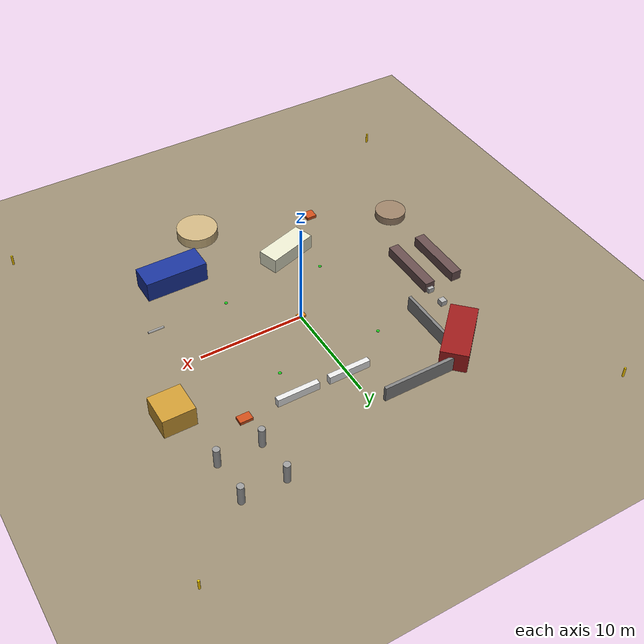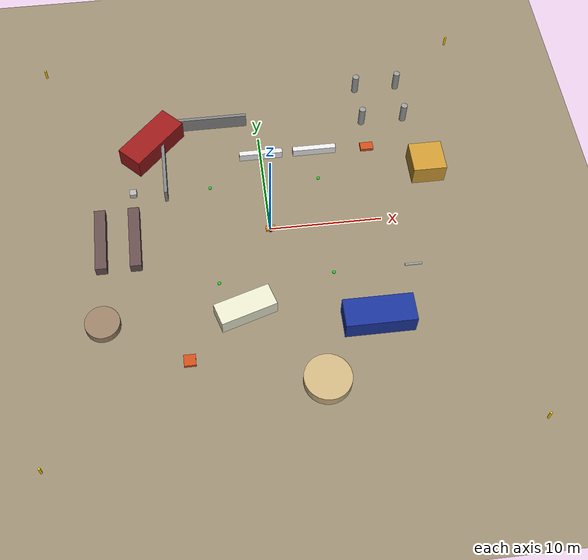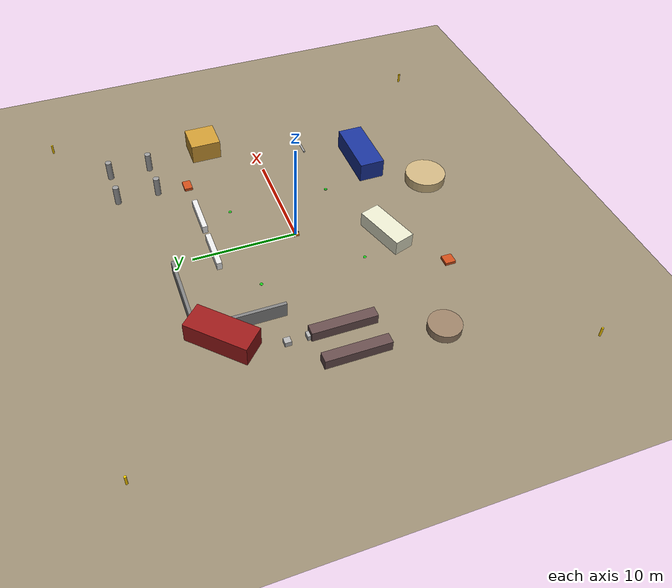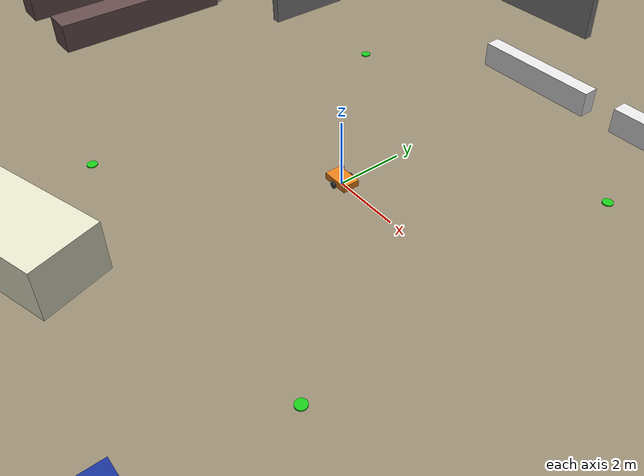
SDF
<?xml version="1.0"?>
<sdf version="1.9">
  <world name="construction_site">
    <!-- Physics settings -->
    <physics name="1ms" type="ignored">
      <max_step_size>0.002</max_step_size>
      <real_time_factor>1.0</real_time_factor>
    </physics>

    <!-- Scene settings -->
    <scene>
      <ambient>0.4 0.4 0.4 1</ambient>
      <background>0.6 0.7 0.9 1</background>
      <shadows>true</shadows>
    </scene>

    <!-- Plugins (sensors plugin removed for ARM64 Docker compatibility) -->
    <plugin filename="gz-sim-physics-system" name="gz::sim::systems::Physics"/>
    <plugin filename="gz-sim-user-commands-system" name="gz::sim::systems::UserCommands"/>
    <plugin filename="gz-sim-scene-broadcaster-system" name="gz::sim::systems::SceneBroadcaster"/>
    <plugin filename="gz-sim-contact-system" name="gz::sim::systems::Contact"/>

    <!-- Sun light -->
    <light type="directional" name="sun">
      <cast_shadows>true</cast_shadows>
      <pose>0 0 15 0 0 0</pose>
      <diffuse>1 1 1 1</diffuse>
      <specular>0.5 0.5 0.5 1</specular>
      <direction>0 0 -1</direction>
    </light>

    <!-- Ambient light -->
    <light type="directional" name="ambient">
      <cast_shadows>false</cast_shadows>
      <pose>0 0 10 0 0 0</pose>
      <diffuse>0.3 0.3 0.3 1</diffuse>
      <specular>0 0 0 1</specular>
      <direction>0 0 -1</direction>
    </light>

    <!-- Ground plane -->
    <model name="ground_plane">
      <static>true</static>
      <link name="link">
        <collision name="collision">
          <geometry>
            <plane>
              <normal>0 0 1</normal>
              <size>50 50</size>
            </plane>
          </geometry>
          <surface>
            <friction>
              <ode><mu>1.0</mu><mu2>1.0</mu2></ode>
            </friction>
          </surface>
        </collision>
        <visual name="visual">
          <geometry>
            <plane>
              <normal>0 0 1</normal>
              <size>50 50</size>
            </plane>
          </geometry>
          <material>
            <ambient>0.6 0.55 0.45 1</ambient>
            <diffuse>0.6 0.55 0.45 1</diffuse>
          </material>
        </visual>
      </link>
    </model>

    <!-- Site boundary markers (yellow posts) -->
    <model name="boundary_nw">
      <static>true</static>
      <pose>-20 20 0.5 0 0 0</pose>
      <link name="link">
        <visual name="visual">
          <geometry><cylinder><radius>0.1</radius><length>1.0</length></cylinder></geometry>
          <material><ambient>1 0.8 0 1</ambient><diffuse>1 0.8 0 1</diffuse></material>
        </visual>
        <collision name="collision">
          <geometry><cylinder><radius>0.1</radius><length>1.0</length></cylinder></geometry>
        </collision>
      </link>
    </model>

    <model name="boundary_ne">
      <static>true</static>
      <pose>20 20 0.5 0 0 0</pose>
      <link name="link">
        <visual name="visual">
          <geometry><cylinder><radius>0.1</radius><length>1.0</length></cylinder></geometry>
          <material><ambient>1 0.8 0 1</ambient><diffuse>1 0.8 0 1</diffuse></material>
        </visual>
        <collision name="collision">
          <geometry><cylinder><radius>0.1</radius><length>1.0</length></cylinder></geometry>
        </collision>
      </link>
    </model>

    <model name="boundary_sw">
      <static>true</static>
      <pose>-20 -20 0.5 0 0 0</pose>
      <link name="link">
        <visual name="visual">
          <geometry><cylinder><radius>0.1</radius><length>1.0</length></cylinder></geometry>
          <material><ambient>1 0.8 0 1</ambient><diffuse>1 0.8 0 1</diffuse></material>
        </visual>
        <collision name="collision">
          <geometry><cylinder><radius>0.1</radius><length>1.0</length></cylinder></geometry>
        </collision>
      </link>
    </model>

    <model name="boundary_se">
      <static>true</static>
      <pose>20 -20 0.5 0 0 0</pose>
      <link name="link">
        <visual name="visual">
          <geometry><cylinder><radius>0.1</radius><length>1.0</length></cylinder></geometry>
          <material><ambient>1 0.8 0 1</ambient><diffuse>1 0.8 0 1</diffuse></material>
        </visual>
        <collision name="collision">
          <geometry><cylinder><radius>0.1</radius><length>1.0</length></cylinder></geometry>
        </collision>
      </link>
    </model>

    <!-- Work area markers (green survey points) -->
    <model name="marker_1">
      <static>true</static>
      <pose>-5 5 0.02 0 0 0</pose>
      <link name="link">
        <visual name="visual">
          <geometry><cylinder><radius>0.15</radius><length>0.04</length></cylinder></geometry>
          <material><ambient>0.1 0.8 0.1 1</ambient><diffuse>0.1 0.8 0.1 1</diffuse></material>
        </visual>
      </link>
    </model>

    <model name="marker_2">
      <static>true</static>
      <pose>5 5 0.02 0 0 0</pose>
      <link name="link">
        <visual name="visual">
          <geometry><cylinder><radius>0.15</radius><length>0.04</length></cylinder></geometry>
          <material><ambient>0.1 0.8 0.1 1</ambient><diffuse>0.1 0.8 0.1 1</diffuse></material>
        </visual>
      </link>
    </model>

    <model name="marker_3">
      <static>true</static>
      <pose>5 -5 0.02 0 0 0</pose>
      <link name="link">
        <visual name="visual">
          <geometry><cylinder><radius>0.15</radius><length>0.04</length></cylinder></geometry>
          <material><ambient>0.1 0.8 0.1 1</ambient><diffuse>0.1 0.8 0.1 1</diffuse></material>
        </visual>
      </link>
    </model>

    <model name="marker_4">
      <static>true</static>
      <pose>-5 -5 0.02 0 0 0</pose>
      <link name="link">
        <visual name="visual">
          <geometry><cylinder><radius>0.15</radius><length>0.04</length></cylinder></geometry>
          <material><ambient>0.1 0.8 0.1 1</ambient><diffuse>0.1 0.8 0.1 1</diffuse></material>
        </visual>
      </link>
    </model>

    <!-- Obstacles: Pallet 1 -->
    <model name="pallet_1">
      <static>true</static>
      <pose>10 8 0.15 0 0 0</pose>
      <link name="link">
        <visual name="visual">
          <geometry><box><size>1.2 0.8 0.3</size></box></geometry>
          <material><ambient>0.8 0.3 0.1 1</ambient><diffuse>0.8 0.3 0.1 1</diffuse></material>
        </visual>
        <collision name="collision">
          <geometry><box><size>1.2 0.8 0.3</size></box></geometry>
        </collision>
      </link>
    </model>

    <!-- Obstacles: Pallet 2 -->
    <model name="pallet_2">
      <static>true</static>
      <pose>-8 -12 0.15 0 0 0</pose>
      <link name="link">
        <visual name="visual">
          <geometry><box><size>1.0 1.0 0.3</size></box></geometry>
          <material><ambient>0.8 0.3 0.1 1</ambient><diffuse>0.8 0.3 0.1 1</diffuse></material>
        </visual>
        <collision name="collision">
          <geometry><box><size>1.0 1.0 0.3</size></box></geometry>
        </collision>
      </link>
    </model>

    <!-- Obstacles: Pipes -->
    <model name="pipes">
      <static>true</static>
      <pose>12 -5 0.1 0 1.5708 0</pose>
      <link name="link">
        <visual name="visual">
          <geometry><cylinder><radius>0.1</radius><length>1.5</length></cylinder></geometry>
          <material><ambient>0.7 0.7 0.7 1</ambient><diffuse>0.7 0.7 0.7 1</diffuse></material>
        </visual>
        <collision name="collision">
          <geometry><cylinder><radius>0.1</radius><length>1.5</length></cylinder></geometry>
        </collision>
      </link>
    </model>

    <!-- Obstacles: Concrete block 1 -->
    <model name="block_1">
      <static>true</static>
      <pose>-12 3 0.25 0 0 0</pose>
      <link name="link">
        <visual name="visual">
          <geometry><box><size>0.6 0.6 0.5</size></box></geometry>
          <material><ambient>0.7 0.7 0.7 1</ambient><diffuse>0.7 0.7 0.7 1</diffuse></material>
        </visual>
        <collision name="collision">
          <geometry><box><size>0.6 0.6 0.5</size></box></geometry>
        </collision>
      </link>
    </model>

    <!-- Obstacles: Concrete block 2 -->
    <model name="block_2">
      <static>true</static>
      <pose>-12 5 0.25 0 0 0</pose>
      <link name="link">
        <visual name="visual">
          <geometry><box><size>0.6 0.6 0.5</size></box></geometry>
          <material><ambient>0.7 0.7 0.7 1</ambient><diffuse>0.7 0.7 0.7 1</diffuse></material>
        </visual>
        <collision name="collision">
          <geometry><box><size>0.6 0.6 0.5</size></box></geometry>
        </collision>
      </link>
    </model>

    <!-- LARGE OBSTACLES FOR SLAM/NAV2 TESTING         -->

    <!-- Storage Container 1 (large blue shipping container) -->
    <model name="container_1">
      <static>true</static>
      <pose>8 -10 1 0 0 0</pose>
      <link name="link">
        <visual name="visual">
          <geometry><box><size>6 2.5 2</size></box></geometry>
          <material><ambient>0.1 0.2 0.6 1</ambient><diffuse>0.1 0.2 0.6 1</diffuse></material>
        </visual>
        <collision name="collision">
          <geometry><box><size>6 2.5 2</size></box></geometry>
        </collision>
      </link>
    </model>

    <!-- Storage Container 2 -->
    <model name="container_2">
      <static>true</static>
      <pose>-10 10 1 0 0 0.785</pose>
      <link name="link">
        <visual name="visual">
          <geometry><box><size>6 2.5 2</size></box></geometry>
          <material><ambient>0.6 0.1 0.1 1</ambient><diffuse>0.6 0.1 0.1 1</diffuse></material>
        </visual>
        <collision name="collision">
          <geometry><box><size>6 2.5 2</size></box></geometry>
        </collision>
      </link>
    </model>

    <!-- Building Foundation (L-shaped wall) - Part 1 -->
    <model name="wall_1">
      <static>true</static>
      <pose>-5 12 0.75 0 0 0</pose>
      <link name="link">
        <visual name="visual">
          <geometry><box><size>8 0.3 1.5</size></box></geometry>
          <material><ambient>0.5 0.5 0.5 1</ambient><diffuse>0.5 0.5 0.5 1</diffuse></material>
        </visual>
        <collision name="collision">
          <geometry><box><size>8 0.3 1.5</size></box></geometry>
        </collision>
      </link>
    </model>

    <!-- Building Foundation - Part 2 (perpendicular) -->
    <model name="wall_2">
      <static>true</static>
      <pose>-9 8 0.75 0 0 0</pose>
      <link name="link">
        <visual name="visual">
          <geometry><box><size>0.3 8 1.5</size></box></geometry>
          <material><ambient>0.5 0.5 0.5 1</ambient><diffuse>0.5 0.5 0.5 1</diffuse></material>
        </visual>
        <collision name="collision">
          <geometry><box><size>0.3 8 1.5</size></box></geometry>
        </collision>
      </link>
    </model>

    <!-- Construction Equipment - Scaffolding structure -->
    <model name="scaffolding">
      <static>true</static>
      <pose>15 5 1 0 0 0</pose>
      <link name="link">
        <visual name="visual">
          <geometry><box><size>3 3 2</size></box></geometry>
          <material><ambient>0.8 0.6 0.2 1</ambient><diffuse>0.8 0.6 0.2 1</diffuse></material>
        </visual>
        <collision name="collision">
          <geometry><box><size>3 3 2</size></box></geometry>
        </collision>
      </link>
    </model>

    <!-- Material pile 1 (sand/gravel) -->
    <model name="material_pile_1">
      <static>true</static>
      <pose>3 -15 0.5 0 0 0</pose>
      <link name="link">
        <visual name="visual">
          <geometry><cylinder><radius>2</radius><length>1</length></cylinder></geometry>
          <material><ambient>0.8 0.7 0.5 1</ambient><diffuse>0.8 0.7 0.5 1</diffuse></material>
        </visual>
        <collision name="collision">
          <geometry><cylinder><radius>2</radius><length>1</length></cylinder></geometry>
        </collision>
      </link>
    </model>

    <!-- Material pile 2 -->
    <model name="material_pile_2">
      <static>true</static>
      <pose>-15 -8 0.4 0 0 0</pose>
      <link name="link">
        <visual name="visual">
          <geometry><cylinder><radius>1.5</radius><length>0.8</length></cylinder></geometry>
          <material><ambient>0.6 0.5 0.4 1</ambient><diffuse>0.6 0.5 0.4 1</diffuse></material>
        </visual>
        <collision name="collision">
          <geometry><cylinder><radius>1.5</radius><length>0.8</length></cylinder></geometry>
        </collision>
      </link>
    </model>

    <!-- Barrier wall (concrete jersey barrier) row -->
    <model name="barrier_1">
      <static>true</static>
      <pose>0 8 0.4 0 0 0</pose>
      <link name="link">
        <visual name="visual">
          <geometry><box><size>4 0.5 0.8</size></box></geometry>
          <material><ambient>0.9 0.9 0.9 1</ambient><diffuse>0.9 0.9 0.9 1</diffuse></material>
        </visual>
        <collision name="collision">
          <geometry><box><size>4 0.5 0.8</size></box></geometry>
        </collision>
      </link>
    </model>

    <model name="barrier_2">
      <static>true</static>
      <pose>5 8 0.4 0 0 0</pose>
      <link name="link">
        <visual name="visual">
          <geometry><box><size>4 0.5 0.8</size></box></geometry>
          <material><ambient>0.9 0.9 0.9 1</ambient><diffuse>0.9 0.9 0.9 1</diffuse></material>
        </visual>
        <collision name="collision">
          <geometry><box><size>4 0.5 0.8</size></box></geometry>
        </collision>
      </link>
    </model>

    <!-- Equipment trailer -->
    <model name="trailer">
      <static>true</static>
      <pose>-3 -8 0.75 0 0 0.3</pose>
      <link name="link">
        <visual name="visual">
          <geometry><box><size>5 2 1.5</size></box></geometry>
          <material><ambient>0.9 0.9 0.8 1</ambient><diffuse>0.9 0.9 0.8 1</diffuse></material>
        </visual>
        <collision name="collision">
          <geometry><box><size>5 2 1.5</size></box></geometry>
        </collision>
      </link>
    </model>

    <!-- Concrete pillars (foundation columns) -->
    <model name="pillar_1">
      <static>true</static>
      <pose>10 15 1 0 0 0</pose>
      <link name="link">
        <visual name="visual">
          <geometry><cylinder><radius>0.3</radius><length>2</length></cylinder></geometry>
          <material><ambient>0.6 0.6 0.6 1</ambient><diffuse>0.6 0.6 0.6 1</diffuse></material>
        </visual>
        <collision name="collision">
          <geometry><cylinder><radius>0.3</radius><length>2</length></cylinder></geometry>
        </collision>
      </link>
    </model>

    <model name="pillar_2">
      <static>true</static>
      <pose>14 15 1 0 0 0</pose>
      <link name="link">
        <visual name="visual">
          <geometry><cylinder><radius>0.3</radius><length>2</length></cylinder></geometry>
          <material><ambient>0.6 0.6 0.6 1</ambient><diffuse>0.6 0.6 0.6 1</diffuse></material>
        </visual>
        <collision name="collision">
          <geometry><cylinder><radius>0.3</radius><length>2</length></cylinder></geometry>
        </collision>
      </link>
    </model>

    <model name="pillar_3">
      <static>true</static>
      <pose>10 11 1 0 0 0</pose>
      <link name="link">
        <visual name="visual">
          <geometry><cylinder><radius>0.3</radius><length>2</length></cylinder></geometry>
          <material><ambient>0.6 0.6 0.6 1</ambient><diffuse>0.6 0.6 0.6 1</diffuse></material>
        </visual>
        <collision name="collision">
          <geometry><cylinder><radius>0.3</radius><length>2</length></cylinder></geometry>
        </collision>
      </link>
    </model>

    <model name="pillar_4">
      <static>true</static>
      <pose>14 11 1 0 0 0</pose>
      <link name="link">
        <visual name="visual">
          <geometry><cylinder><radius>0.3</radius><length>2</length></cylinder></geometry>
          <material><ambient>0.6 0.6 0.6 1</ambient><diffuse>0.6 0.6 0.6 1</diffuse></material>
        </visual>
        <collision name="collision">
          <geometry><cylinder><radius>0.3</radius><length>2</length></cylinder></geometry>
        </collision>
      </link>
    </model>

    <!-- Narrow passage obstacles -->
    <model name="passage_wall_left">
      <static>true</static>
      <pose>-15 0 0.5 0 0 0</pose>
      <link name="link">
        <visual name="visual">
          <geometry><box><size>1 6 1</size></box></geometry>
          <material><ambient>0.4 0.3 0.3 1</ambient><diffuse>0.4 0.3 0.3 1</diffuse></material>
        </visual>
        <collision name="collision">
          <geometry><box><size>1 6 1</size></box></geometry>
        </collision>
      </link>
    </model>

    <model name="passage_wall_right">
      <static>true</static>
      <pose>-12 0 0.5 0 0 0</pose>
      <link name="link">
        <visual name="visual">
          <geometry><box><size>1 6 1</size></box></geometry>
          <material><ambient>0.4 0.3 0.3 1</ambient><diffuse>0.4 0.3 0.3 1</diffuse></material>
        </visual>
        <collision name="collision">
          <geometry><box><size>1 6 1</size></box></geometry>
        </collision>
      </link>
    </model>

    <!-- Include the robot -->
    <include>
      <uri>model://sitebot</uri>
      <pose>0 0 0 0 0 0</pose>
    </include>

  </world>
</sdf>

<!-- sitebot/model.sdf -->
<sdf version="1.9">
  <model name="sitebot">
    <static>false</static>

    <!-- Chassis -->
    <link name="chassis">
      <pose>0 0 0.15 0 0 0</pose>
      <inertial>
        <mass>50</mass>
        <inertia>
          <ixx>2.0</ixx>
          <iyy>2.0</iyy>
          <izz>1.0</izz>
        </inertia>
      </inertial>

      <!-- Main body -->
      <visual name="chassis_visual">
        <geometry>
          <box><size>0.8 0.5 0.2</size></box>
        </geometry>
        <material>
          <ambient>0.9 0.5 0.1 1</ambient>
          <diffuse>0.9 0.5 0.1 1</diffuse>
        </material>
      </visual>
      <collision name="chassis_collision">
        <geometry>
          <box><size>0.8 0.5 0.2</size></box>
        </geometry>
      </collision>

      <!-- Sensor mast -->
      <visual name="mast_visual">
        <pose>0 0 0.25 0 0 0</pose>
        <geometry>
          <cylinder><radius>0.03</radius><length>0.3</length></cylinder>
        </geometry>
        <material>
          <ambient>0.1 0.1 0.8 1</ambient>
          <diffuse>0.1 0.1 0.8 1</diffuse>
        </material>
      </visual>

      <!-- Sensor head -->
      <visual name="sensor_head_visual">
        <pose>0 0 0.42 0 0 0</pose>
        <geometry>
          <sphere><radius>0.06</radius></sphere>
        </geometry>
        <material>
          <ambient>0.1 0.1 0.8 1</ambient>
          <diffuse>0.1 0.1 0.8 1</diffuse>
        </material>
      </visual>

      <!-- CPU-based Lidar Sensor -->
      <sensor name="lidar" type="gpu_lidar">
        <pose>0 0 0.42 0 0 0</pose>
        <topic>/scan</topic>
        <update_rate>10</update_rate>
        <lidar>
          <scan>
            <horizontal>
              <samples>360</samples>
              <resolution>1</resolution>
              <min_angle>-3.14159</min_angle>
              <max_angle>3.14159</max_angle>
            </horizontal>
          </scan>
          <range>
            <min>0.1</min>
            <max>30.0</max>
            <resolution>0.01</resolution>
          </range>
          <noise>
            <type>gaussian</type>
            <mean>0</mean>
            <stddev>0.01</stddev>
          </noise>
        </lidar>
        <visualize>true</visualize>
        <always_on>true</always_on>
      </sensor>

      <!-- IMU Sensor -->
      <sensor name="imu" type="imu">
        <pose>0 0 0.15 0 0 0</pose>
        <topic>/imu</topic>
        <update_rate>100</update_rate>
        <imu>
          <angular_velocity>
            <x><noise type="gaussian"><mean>0</mean><stddev>0.001</stddev></noise></x>
            <y><noise type="gaussian"><mean>0</mean><stddev>0.001</stddev></noise></y>
            <z><noise type="gaussian"><mean>0</mean><stddev>0.001</stddev></noise></z>
          </angular_velocity>
          <linear_acceleration>
            <x><noise type="gaussian"><mean>0</mean><stddev>0.01</stddev></noise></x>
            <y><noise type="gaussian"><mean>0</mean><stddev>0.01</stddev></noise></y>
            <z><noise type="gaussian"><mean>0</mean><stddev>0.01</stddev></noise></z>
          </linear_acceleration>
        </imu>
        <always_on>true</always_on>
      </sensor>
    </link>

    <!-- Left wheel -->
    <link name="left_wheel">
      <pose>0 0.3 0.1 -1.5708 0 0</pose>
      <inertial>
        <mass>2</mass>
        <inertia>
          <ixx>0.02</ixx>
          <iyy>0.04</iyy>
          <izz>0.02</izz>
        </inertia>
      </inertial>
      <visual name="left_wheel_visual">
        <geometry>
          <cylinder><radius>0.1</radius><length>0.05</length></cylinder>
        </geometry>
        <material>
          <ambient>0.2 0.2 0.2 1</ambient>
          <diffuse>0.2 0.2 0.2 1</diffuse>
        </material>
      </visual>
      <collision name="left_wheel_collision">
        <geometry>
          <cylinder><radius>0.1</radius><length>0.05</length></cylinder>
        </geometry>
        <surface>
          <friction>
            <ode><mu>1.5</mu><mu2>1.5</mu2></ode>
          </friction>
        </surface>
      </collision>
    </link>

    <!-- Right wheel -->
    <link name="right_wheel">
      <pose>0 -0.3 0.1 -1.5708 0 0</pose>
      <inertial>
        <mass>2</mass>
        <inertia>
          <ixx>0.02</ixx>
          <iyy>0.04</iyy>
          <izz>0.02</izz>
        </inertia>
      </inertial>
      <visual name="right_wheel_visual">
        <geometry>
          <cylinder><radius>0.1</radius><length>0.05</length></cylinder>
        </geometry>
        <material>
          <ambient>0.2 0.2 0.2 1</ambient>
          <diffuse>0.2 0.2 0.2 1</diffuse>
        </material>
      </visual>
      <collision name="right_wheel_collision">
        <geometry>
          <cylinder><radius>0.1</radius><length>0.05</length></cylinder>
        </geometry>
        <surface>
          <friction>
            <ode><mu>1.5</mu><mu2>1.5</mu2></ode>
          </friction>
        </surface>
      </collision>
    </link>

    <!-- Front caster -->
    <link name="front_caster">
      <pose>0.35 0 0.05 0 0 0</pose>
      <inertial>
        <mass>0.5</mass>
        <inertia>
          <ixx>0.001</ixx>
          <iyy>0.001</iyy>
          <izz>0.001</izz>
        </inertia>
      </inertial>
      <visual name="front_caster_visual">
        <geometry>
          <sphere><radius>0.05</radius></sphere>
        </geometry>
        <material>
          <ambient>0.5 0.5 0.5 1</ambient>
          <diffuse>0.5 0.5 0.5 1</diffuse>
        </material>
      </visual>
      <collision name="front_caster_collision">
        <geometry>
          <sphere><radius>0.05</radius></sphere>
        </geometry>
        <surface>
          <friction>
            <ode><mu>0.01</mu><mu2>0.01</mu2></ode>
          </friction>
        </surface>
      </collision>
    </link>

    <!-- Rear caster -->
    <link name="rear_caster">
      <pose>-0.35 0 0.05 0 0 0</pose>
      <inertial>
        <mass>0.5</mass>
        <inertia>
          <ixx>0.001</ixx>
          <iyy>0.001</iyy>
          <izz>0.001</izz>
        </inertia>
      </inertial>
      <visual name="rear_caster_visual">
        <geometry>
          <sphere><radius>0.05</radius></sphere>
        </geometry>
        <material>
          <ambient>0.5 0.5 0.5 1</ambient>
          <diffuse>0.5 0.5 0.5 1</diffuse>
        </material>
      </visual>
      <collision name="rear_caster_collision">
        <geometry>
          <sphere><radius>0.05</radius></sphere>
        </geometry>
        <surface>
          <friction>
            <ode><mu>0.01</mu><mu2>0.01</mu2></ode>
          </friction>
        </surface>
      </collision>
    </link>

    <!-- Joints -->
    <joint name="left_wheel_joint" type="revolute">
      <parent>chassis</parent>
      <child>left_wheel</child>
      <axis>
        <xyz>0 0 1</xyz>
        <limit>
          <lower>-1e16</lower>
          <upper>1e16</upper>
        </limit>
      </axis>
    </joint>

    <joint name="right_wheel_joint" type="revolute">
      <parent>chassis</parent>
      <child>right_wheel</child>
      <axis>
        <xyz>0 0 1</xyz>
        <limit>
          <lower>-1e16</lower>
          <upper>1e16</upper>
        </limit>
      </axis>
    </joint>

    <joint name="front_caster_joint" type="ball">
      <parent>chassis</parent>
      <child>front_caster</child>
    </joint>

    <joint name="rear_caster_joint" type="ball">
      <parent>chassis</parent>
      <child>rear_caster</child>
    </joint>

    <!-- Diff Drive Plugin -->
    <plugin filename="gz-sim-diff-drive-system" name="gz::sim::systems::DiffDrive">
      <left_joint>left_wheel_joint</left_joint>
      <right_joint>right_wheel_joint</right_joint>
      <wheel_separation>0.6</wheel_separation>
      <wheel_radius>0.1</wheel_radius>
      <max_linear_acceleration>1.0</max_linear_acceleration>
      <max_angular_acceleration>2.0</max_angular_acceleration>
      <odom_publish_frequency>50</odom_publish_frequency>
      <topic>/cmd_vel</topic>
      <odom_topic>/odom</odom_topic>
      <frame_id>odom</frame_id>
      <child_frame_id>chassis</child_frame_id>
    </plugin>

    <!-- Joint State Publisher Plugin -->
    <plugin filename="gz-sim-joint-state-publisher-system" name="gz::sim::systems::JointStatePublisher">
      <joint_name>left_wheel_joint</joint_name>
      <joint_name>right_wheel_joint</joint_name>
      <topic>/joint_states</topic>
    </plugin>

    <!-- Sensors Plugin for Lidar and IMU -->
    <plugin filename="gz-sim-sensors-system" name="gz::sim::systems::Sensors">
      <render_engine>ogre2</render_engine>
    </plugin>

    <!-- IMU Plugin -->
    <plugin filename="gz-sim-imu-system" name="gz::sim::systems::Imu"/>

  </model>
</sdf>
